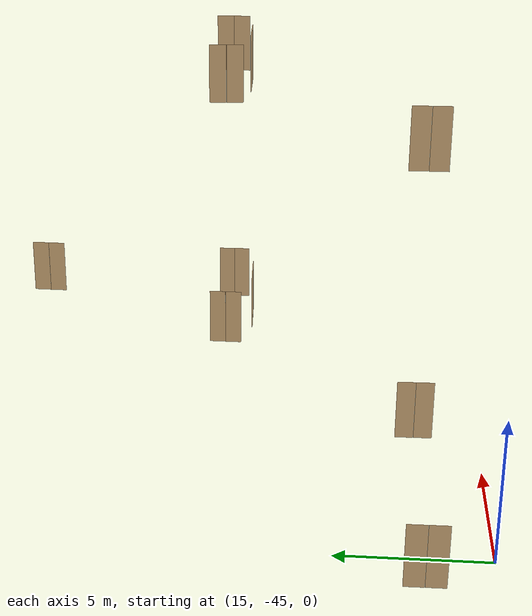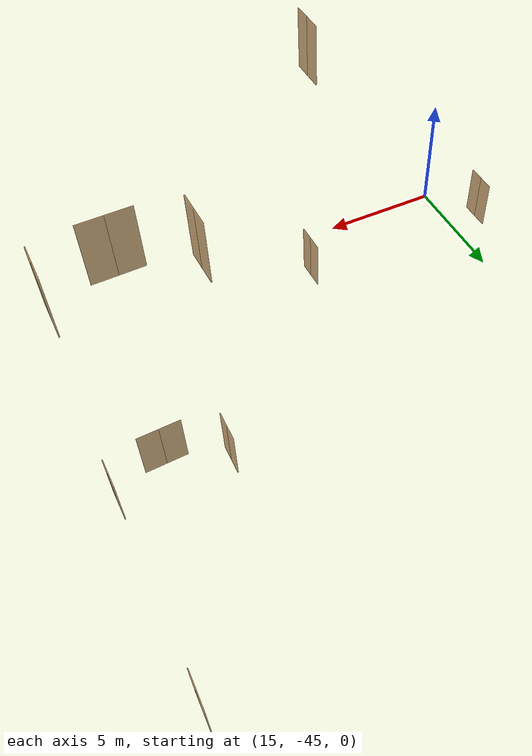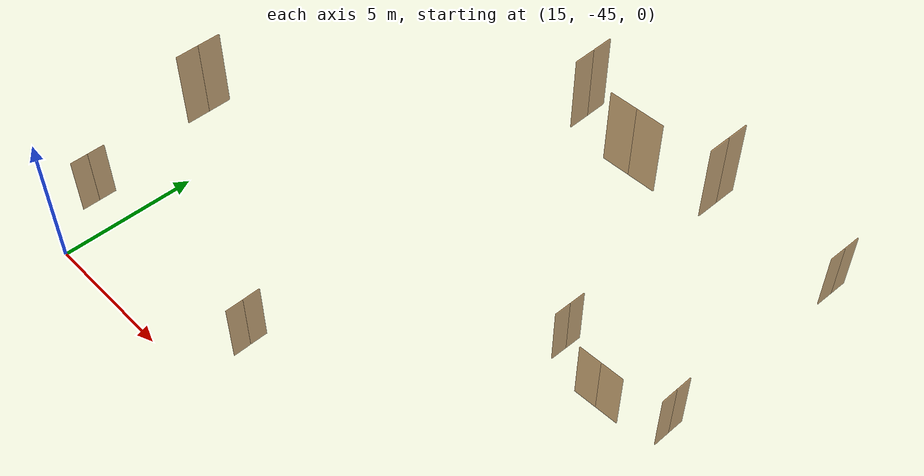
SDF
<sdf version="1.7">
 <world name="sim_world">
  <model name="door20">
   <pose>22.196594984362328 -42.79629647210699 0.0 0 0 1.5841898704715496</pose>
   <link name="right">
    <pose>0.3262262213419995 0 1.11 0 0 0</pose>
    <visual name="right_visual">
     <geometry><box><size>0.642452442683999 0.03 2.2</size></box></geometry>
     <material>
      <ambient>0.5 0.25 0 0.6</ambient>
      <diffuse>0.5 0.25 0 0.6</diffuse>
      <pbr><metal><metalness>0.0</metalness></metal></pbr>
     </material>
    </visual>
    <collision name="right_collision">
     <geometry><box><size>0.642452442683999 0.03 2.2</size></box></geometry>
     <surface><contact><collide_bitmask>0x02</collide_bitmask></contact></surface>
    </collision>
    <inertial>
     <mass>50.0</mass>
     <inertia><ixx>20.17041666666667</ixx><iyy>21.886438087960993</iyy><izz>1.7235214212943213</izz></inertia>
    </inertial>
   </link>
   <joint name="right_joint" type="revolute">
    <parent>world</parent>
    <child>right</child>
    <axis><xyz>0 0 -1</xyz><limit><lower>0</lower><upper>1.57</upper></limit></axis>
    <pose>0.3262262213419995 0 0 0 0 0</pose>
   </joint>
   <link name="left">
    <pose>-0.3262262213419995 0 1.11 0 0 0</pose>
    <visual name="left_visual">
     <geometry><box><size>0.642452442683999 0.03 2.2</size></box></geometry>
     <material>
      <ambient>0.5 0.25 0 0.6</ambient>
      <diffuse>0.5 0.25 0 0.6</diffuse>
      <pbr><metal><metalness>0.0</metalness></metal></pbr>
     </material>
    </visual>
    <collision name="left_collision">
     <geometry><box><size>0.642452442683999 0.03 2.2</size></box></geometry>
     <surface><contact><collide_bitmask>0x02</collide_bitmask></contact></surface>
    </collision>
    <inertial>
     <mass>50.0</mass>
     <inertia><ixx>20.17041666666667</ixx><iyy>21.886438087960993</iyy><izz>1.7235214212943213</izz></inertia>
    </inertial>
   </link>
   <joint name="left_joint" type="revolute">
    <parent>world</parent>
    <child>left</child>
    <axis><xyz>0 0 -1</xyz><limit><lower>-1.57</lower><upper>0</upper></limit></axis>
    <pose>-0.3262262213419995 0 0 0 0 0</pose>
   </joint>
   <plugin name="register_component" filename="libregister_component.so">
    <component name="Door">
     <v_max_door>0.5</v_max_door>
     <a_max_door>0.3</a_max_door>
     <a_nom_door>0.15</a_nom_door>
     <dx_min_door>0.01</dx_min_door>
     <f_max_door>500.0</f_max_door>
     <ros_interface>true</ros_interface>
     <door name="door20" type="DoubleSwingDoor" left_joint_name="left_joint" right_joint_name="right_joint"/>
    </component>
   </plugin>
  </model>
  <model name="door18">
   <pose>13.645016197706322 -42.78745664241474 0.0 0 0 1.5759858748518023</pose>
   <link name="right">
    <pose>0.3323023677213366 0 1.11 0 0 0</pose>
    <visual name="right_visual">
     <geometry><box><size>0.6546047354426732 0.03 2.2</size></box></geometry>
     <material>
      <ambient>0.5 0.25 0 0.6</ambient>
      <diffuse>0.5 0.25 0 0.6</diffuse>
      <pbr><metal><metalness>0.0</metalness></metal></pbr>
     </material>
    </visual>
    <collision name="right_collision">
     <geometry><box><size>0.6546047354426732 0.03 2.2</size></box></geometry>
     <surface><contact><collide_bitmask>0x02</collide_bitmask></contact></surface>
    </collision>
    <inertial>
     <mass>50.0</mass>
     <inertia><ixx>20.17041666666667</ixx><iyy>21.952113998599888</iyy><izz>1.7891973319332173</izz></inertia>
    </inertial>
   </link>
   <joint name="right_joint" type="revolute">
    <parent>world</parent>
    <child>right</child>
    <axis><xyz>0 0 -1</xyz><limit><lower>0</lower><upper>1.57</upper></limit></axis>
    <pose>0.3323023677213366 0 0 0 0 0</pose>
   </joint>
   <link name="left">
    <pose>-0.3323023677213366 0 1.11 0 0 0</pose>
    <visual name="left_visual">
     <geometry><box><size>0.6546047354426732 0.03 2.2</size></box></geometry>
     <material>
      <ambient>0.5 0.25 0 0.6</ambient>
      <diffuse>0.5 0.25 0 0.6</diffuse>
      <pbr><metal><metalness>0.0</metalness></metal></pbr>
     </material>
    </visual>
    <collision name="left_collision">
     <geometry><box><size>0.6546047354426732 0.03 2.2</size></box></geometry>
     <surface><contact><collide_bitmask>0x02</collide_bitmask></contact></surface>
    </collision>
    <inertial>
     <mass>50.0</mass>
     <inertia><ixx>20.17041666666667</ixx><iyy>21.952113998599888</iyy><izz>1.7891973319332173</izz></inertia>
    </inertial>
   </link>
   <joint name="left_joint" type="revolute">
    <parent>world</parent>
    <child>left</child>
    <axis><xyz>0 0 -1</xyz><limit><lower>-1.57</lower><upper>0</upper></limit></axis>
    <pose>-0.3323023677213366 0 0 0 0 0</pose>
   </joint>
   <plugin name="register_component" filename="libregister_component.so">
    <component name="Door">
     <v_max_door>0.5</v_max_door>
     <a_max_door>0.3</a_max_door>
     <a_nom_door>0.15</a_nom_door>
     <dx_min_door>0.01</dx_min_door>
     <f_max_door>500.0</f_max_door>
     <ros_interface>true</ros_interface>
     <door name="door18" type="DoubleSwingDoor" left_joint_name="left_joint" right_joint_name="right_joint"/>
    </component>
   </plugin>
  </model>
  <model name="door31">
   <pose>33.37429878277079 -27.67185507202123 0.0 0 0 1.5524595629320217</pose>
   <link name="right">
    <pose>0.3390572231146725 0 1.11 0 0 0</pose>
    <visual name="right_visual">
     <geometry><box><size>0.668114446229345 0.03 2.2</size></box></geometry>
     <material>
      <ambient>0.5 0.25 0 0.6</ambient>
      <diffuse>0.5 0.25 0 0.6</diffuse>
      <pbr><metal><metalness>0.0</metalness></metal></pbr>
     </material>
    </visual>
    <collision name="right_collision">
     <geometry><box><size>0.668114446229345 0.03 2.2</size></box></geometry>
     <surface><contact><collide_bitmask>0x02</collide_bitmask></contact></surface>
    </collision>
    <inertial>
     <mass>50.0</mass>
     <inertia><ixx>20.17041666666667</ixx><iyy>22.026570471918106</iyy><izz>1.8636538052514349</izz></inertia>
    </inertial>
   </link>
   <joint name="right_joint" type="revolute">
    <parent>world</parent>
    <child>right</child>
    <axis><xyz>0 0 -1</xyz><limit><lower>0</lower><upper>1.57</upper></limit></axis>
    <pose>0.3390572231146725 0 0 0 0 0</pose>
   </joint>
   <link name="left">
    <pose>-0.3390572231146725 0 1.11 0 0 0</pose>
    <visual name="left_visual">
     <geometry><box><size>0.668114446229345 0.03 2.2</size></box></geometry>
     <material>
      <ambient>0.5 0.25 0 0.6</ambient>
      <diffuse>0.5 0.25 0 0.6</diffuse>
      <pbr><metal><metalness>0.0</metalness></metal></pbr>
     </material>
    </visual>
    <collision name="left_collision">
     <geometry><box><size>0.668114446229345 0.03 2.2</size></box></geometry>
     <surface><contact><collide_bitmask>0x02</collide_bitmask></contact></surface>
    </collision>
    <inertial>
     <mass>50.0</mass>
     <inertia><ixx>20.17041666666667</ixx><iyy>22.026570471918106</iyy><izz>1.8636538052514349</izz></inertia>
    </inertial>
   </link>
   <joint name="left_joint" type="revolute">
    <parent>world</parent>
    <child>left</child>
    <axis><xyz>0 0 -1</xyz><limit><lower>-1.57</lower><upper>0</upper></limit></axis>
    <pose>-0.3390572231146725 0 0 0 0 0</pose>
   </joint>
   <plugin name="register_component" filename="libregister_component.so">
    <component name="Door">
     <v_max_door>0.5</v_max_door>
     <a_max_door>0.3</a_max_door>
     <a_nom_door>0.15</a_nom_door>
     <dx_min_door>0.01</dx_min_door>
     <f_max_door>500.0</f_max_door>
     <ros_interface>true</ros_interface>
     <door name="door31" type="DoubleSwingDoor" left_joint_name="left_joint" right_joint_name="right_joint"/>
    </component>
   </plugin>
  </model>
  <model name="door33">
   <pose>29.060751723437633 -35.60632679701412 0.0 0 0 1.5595276240747098</pose>
   <link name="right">
    <pose>0.31121799356818586 0 1.11 0 0 0</pose>
    <visual name="right_visual">
     <geometry><box><size>0.6124359871363717 0.03 2.2</size></box></geometry>
     <material>
      <ambient>0.5 0.25 0 0.6</ambient>
      <diffuse>0.5 0.25 0 0.6</diffuse>
      <pbr><metal><metalness>0.0</metalness></metal></pbr>
     </material>
    </visual>
    <collision name="right_collision">
     <geometry><box><size>0.6124359871363717 0.03 2.2</size></box></geometry>
     <surface><contact><collide_bitmask>0x02</collide_bitmask></contact></surface>
    </collision>
    <inertial>
     <mass>50.0</mass>
     <inertia><ixx>20.17041666666667</ixx><iyy>21.729490993082095</iyy><izz>1.5665743264154253</izz></inertia>
    </inertial>
   </link>
   <joint name="right_joint" type="revolute">
    <parent>world</parent>
    <child>right</child>
    <axis><xyz>0 0 1</xyz><limit><lower>0</lower><upper>1.57</upper></limit></axis>
    <pose>0.31121799356818586 0 0 0 0 0</pose>
   </joint>
   <link name="left">
    <pose>-0.31121799356818586 0 1.11 0 0 0</pose>
    <visual name="left_visual">
     <geometry><box><size>0.6124359871363717 0.03 2.2</size></box></geometry>
     <material>
      <ambient>0.5 0.25 0 0.6</ambient>
      <diffuse>0.5 0.25 0 0.6</diffuse>
      <pbr><metal><metalness>0.0</metalness></metal></pbr>
     </material>
    </visual>
    <collision name="left_collision">
     <geometry><box><size>0.6124359871363717 0.03 2.2</size></box></geometry>
     <surface><contact><collide_bitmask>0x02</collide_bitmask></contact></surface>
    </collision>
    <inertial>
     <mass>50.0</mass>
     <inertia><ixx>20.17041666666667</ixx><iyy>21.729490993082095</iyy><izz>1.5665743264154253</izz></inertia>
    </inertial>
   </link>
   <joint name="left_joint" type="revolute">
    <parent>world</parent>
    <child>left</child>
    <axis><xyz>0 0 1</xyz><limit><lower>-1.57</lower><upper>0</upper></limit></axis>
    <pose>-0.31121799356818586 0 0 0 0 0</pose>
   </joint>
   <plugin name="register_component" filename="libregister_component.so">
    <component name="Door">
     <v_max_door>0.5</v_max_door>
     <a_max_door>0.3</a_max_door>
     <a_nom_door>0.15</a_nom_door>
     <dx_min_door>0.01</dx_min_door>
     <f_max_door>500.0</f_max_door>
     <ros_interface>true</ros_interface>
     <door name="door33" type="DoubleSwingDoor" left_joint_name="left_joint" right_joint_name="right_joint"/>
    </component>
   </plugin>
  </model>
  <model name="door32">
   <pose>33.37790717226811 -35.65114908101101 0.0 0 0 1.5830044547429667</pose>
   <link name="right">
    <pose>0.3116054796662517 0 1.11 0 0 0</pose>
    <visual name="right_visual">
     <geometry><box><size>0.6132109593325034 0.03 2.2</size></box></geometry>
     <material>
      <ambient>0.5 0.25 0 0.6</ambient>
      <diffuse>0.5 0.25 0 0.6</diffuse>
      <pbr><metal><metalness>0.0</metalness></metal></pbr>
     </material>
    </visual>
    <collision name="right_collision">
     <geometry><box><size>0.6132109593325034 0.03 2.2</size></box></geometry>
     <surface><contact><collide_bitmask>0x02</collide_bitmask></contact></surface>
    </collision>
    <inertial>
     <mass>50.0</mass>
     <inertia><ixx>20.17041666666667</ixx><iyy>21.733448669356207</iyy><izz>1.570532002689538</izz></inertia>
    </inertial>
   </link>
   <joint name="right_joint" type="revolute">
    <parent>world</parent>
    <child>right</child>
    <axis><xyz>0 0 -1</xyz><limit><lower>0</lower><upper>1.57</upper></limit></axis>
    <pose>0.3116054796662517 0 0 0 0 0</pose>
   </joint>
   <link name="left">
    <pose>-0.3116054796662517 0 1.11 0 0 0</pose>
    <visual name="left_visual">
     <geometry><box><size>0.6132109593325034 0.03 2.2</size></box></geometry>
     <material>
      <ambient>0.5 0.25 0 0.6</ambient>
      <diffuse>0.5 0.25 0 0.6</diffuse>
      <pbr><metal><metalness>0.0</metalness></metal></pbr>
     </material>
    </visual>
    <collision name="left_collision">
     <geometry><box><size>0.6132109593325034 0.03 2.2</size></box></geometry>
     <surface><contact><collide_bitmask>0x02</collide_bitmask></contact></surface>
    </collision>
    <inertial>
     <mass>50.0</mass>
     <inertia><ixx>20.17041666666667</ixx><iyy>21.733448669356207</iyy><izz>1.570532002689538</izz></inertia>
    </inertial>
   </link>
   <joint name="left_joint" type="revolute">
    <parent>world</parent>
    <child>left</child>
    <axis><xyz>0 0 -1</xyz><limit><lower>-1.57</lower><upper>0</upper></limit></axis>
    <pose>-0.3116054796662517 0 0 0 0 0</pose>
   </joint>
   <plugin name="register_component" filename="libregister_component.so">
    <component name="Door">
     <v_max_door>0.5</v_max_door>
     <a_max_door>0.3</a_max_door>
     <a_nom_door>0.15</a_nom_door>
     <dx_min_door>0.01</dx_min_door>
     <f_max_door>500.0</f_max_door>
     <ros_interface>true</ros_interface>
     <door name="door32" type="DoubleSwingDoor" left_joint_name="left_joint" right_joint_name="right_joint"/>
    </component>
   </plugin>
  </model>
  <model name="door34_end">
   <pose>31.24236372538701 -36.553971031546716 0.0 0 0 -3.1073071053219823</pose>
   <link name="right">
    <pose>0.4244453360944399 0 1.11 0 0 0</pose>
    <visual name="right_visual">
     <geometry><box><size>0.8388906721888798 0.03 2.2</size></box></geometry>
     <material>
      <ambient>0.5 0.25 0 0.6</ambient>
      <diffuse>0.5 0.25 0 0.6</diffuse>
      <pbr><metal><metalness>0.0</metalness></metal></pbr>
     </material>
    </visual>
    <collision name="right_collision">
     <geometry><box><size>0.8388906721888798 0.03 2.2</size></box></geometry>
     <surface><contact><collide_bitmask>0x02</collide_bitmask></contact></surface>
    </collision>
    <inertial>
     <mass>50.0</mass>
     <inertia><ixx>20.17041666666667</ixx><iyy>23.098906499522965</iyy><izz>2.9359898328562943</izz></inertia>
    </inertial>
   </link>
   <joint name="right_joint" type="revolute">
    <parent>world</parent>
    <child>right</child>
    <axis><xyz>0 0 -1</xyz><limit><lower>0</lower><upper>1.57</upper></limit></axis>
    <pose>0.4244453360944399 0 0 0 0 0</pose>
   </joint>
   <link name="left">
    <pose>-0.4244453360944399 0 1.11 0 0 0</pose>
    <visual name="left_visual">
     <geometry><box><size>0.8388906721888798 0.03 2.2</size></box></geometry>
     <material>
      <ambient>0.5 0.25 0 0.6</ambient>
      <diffuse>0.5 0.25 0 0.6</diffuse>
      <pbr><metal><metalness>0.0</metalness></metal></pbr>
     </material>
    </visual>
    <collision name="left_collision">
     <geometry><box><size>0.8388906721888798 0.03 2.2</size></box></geometry>
     <surface><contact><collide_bitmask>0x02</collide_bitmask></contact></surface>
    </collision>
    <inertial>
     <mass>50.0</mass>
     <inertia><ixx>20.17041666666667</ixx><iyy>23.098906499522965</iyy><izz>2.9359898328562943</izz></inertia>
    </inertial>
   </link>
   <joint name="left_joint" type="revolute">
    <parent>world</parent>
    <child>left</child>
    <axis><xyz>0 0 -1</xyz><limit><lower>-1.57</lower><upper>0</upper></limit></axis>
    <pose>-0.4244453360944399 0 0 0 0 0</pose>
   </joint>
   <plugin name="register_component" filename="libregister_component.so">
    <component name="Door">
     <v_max_door>0.5</v_max_door>
     <a_max_door>0.3</a_max_door>
     <a_nom_door>0.15</a_nom_door>
     <dx_min_door>0.01</dx_min_door>
     <f_max_door>500.0</f_max_door>
     <ros_interface>true</ros_interface>
     <door name="door34_end" type="DoubleSwingDoor" left_joint_name="left_joint" right_joint_name="right_joint"/>
    </component>
   </plugin>
  </model>
  <model name="N1_door25">
   <pose>29.03334344268106 -35.659298223171604 10.0 0 0 1.59909431136708</pose>
   <link name="right">
    <pose>0.31801738144546654 0 1.11 0 0 0</pose>
    <visual name="right_visual">
     <geometry><box><size>0.6260347628909331 0.03 2.2</size></box></geometry>
     <material>
      <ambient>0.5 0.25 0 0.6</ambient>
      <diffuse>0.5 0.25 0 0.6</diffuse>
      <pbr><metal><metalness>0.0</metalness></metal></pbr>
     </material>
    </visual>
    <collision name="right_collision">
     <geometry><box><size>0.6260347628909331 0.03 2.2</size></box></geometry>
     <surface><contact><collide_bitmask>0x02</collide_bitmask></contact></surface>
    </collision>
    <inertial>
     <mass>50.0</mass>
     <inertia><ixx>20.17041666666667</ixx><iyy>21.79966468478295</iyy><izz>1.6367480181162783</izz></inertia>
    </inertial>
   </link>
   <joint name="right_joint" type="revolute">
    <parent>world</parent>
    <child>right</child>
    <axis><xyz>0 0 1</xyz><limit><lower>0</lower><upper>1.57</upper></limit></axis>
    <pose>0.31801738144546654 0 0 0 0 0</pose>
   </joint>
   <link name="left">
    <pose>-0.31801738144546654 0 1.11 0 0 0</pose>
    <visual name="left_visual">
     <geometry><box><size>0.6260347628909331 0.03 2.2</size></box></geometry>
     <material>
      <ambient>0.5 0.25 0 0.6</ambient>
      <diffuse>0.5 0.25 0 0.6</diffuse>
      <pbr><metal><metalness>0.0</metalness></metal></pbr>
     </material>
    </visual>
    <collision name="left_collision">
     <geometry><box><size>0.6260347628909331 0.03 2.2</size></box></geometry>
     <surface><contact><collide_bitmask>0x02</collide_bitmask></contact></surface>
    </collision>
    <inertial>
     <mass>50.0</mass>
     <inertia><ixx>20.17041666666667</ixx><iyy>21.79966468478295</iyy><izz>1.6367480181162783</izz></inertia>
    </inertial>
   </link>
   <joint name="left_joint" type="revolute">
    <parent>world</parent>
    <child>left</child>
    <axis><xyz>0 0 1</xyz><limit><lower>-1.57</lower><upper>0</upper></limit></axis>
    <pose>-0.31801738144546654 0 0 0 0 0</pose>
   </joint>
   <plugin name="register_component" filename="libregister_component.so">
    <component name="Door">
     <v_max_door>0.5</v_max_door>
     <a_max_door>0.3</a_max_door>
     <a_nom_door>0.15</a_nom_door>
     <dx_min_door>0.01</dx_min_door>
     <f_max_door>500.0</f_max_door>
     <ros_interface>true</ros_interface>
     <door name="N1_door25" type="DoubleSwingDoor" left_joint_name="left_joint" right_joint_name="right_joint"/>
    </component>
   </plugin>
  </model>
  <model name="N1_door26">
   <pose>33.34224610052984 -35.6193817963664 10.0 0 0 1.5777613576291543</pose>
   <link name="right">
    <pose>0.3220934529684108 0 1.11 0 0 0</pose>
    <visual name="right_visual">
     <geometry><box><size>0.6341869059368216 0.03 2.2</size></box></geometry>
     <material>
      <ambient>0.5 0.25 0 0.6</ambient>
      <diffuse>0.5 0.25 0 0.6</diffuse>
      <pbr><metal><metalness>0.0</metalness></metal></pbr>
     </material>
    </visual>
    <collision name="right_collision">
     <geometry><box><size>0.6341869059368216 0.03 2.2</size></box></geometry>
     <surface><contact><collide_bitmask>0x02</collide_bitmask></contact></surface>
    </collision>
    <inertial>
     <mass>50.0</mass>
     <inertia><ixx>20.17041666666667</ixx><iyy>21.842470965257167</iyy><izz>1.6795542985904959</izz></inertia>
    </inertial>
   </link>
   <joint name="right_joint" type="revolute">
    <parent>world</parent>
    <child>right</child>
    <axis><xyz>0 0 -1</xyz><limit><lower>0</lower><upper>1.57</upper></limit></axis>
    <pose>0.3220934529684108 0 0 0 0 0</pose>
   </joint>
   <link name="left">
    <pose>-0.3220934529684108 0 1.11 0 0 0</pose>
    <visual name="left_visual">
     <geometry><box><size>0.6341869059368216 0.03 2.2</size></box></geometry>
     <material>
      <ambient>0.5 0.25 0 0.6</ambient>
      <diffuse>0.5 0.25 0 0.6</diffuse>
      <pbr><metal><metalness>0.0</metalness></metal></pbr>
     </material>
    </visual>
    <collision name="left_collision">
     <geometry><box><size>0.6341869059368216 0.03 2.2</size></box></geometry>
     <surface><contact><collide_bitmask>0x02</collide_bitmask></contact></surface>
    </collision>
    <inertial>
     <mass>50.0</mass>
     <inertia><ixx>20.17041666666667</ixx><iyy>21.842470965257167</iyy><izz>1.6795542985904959</izz></inertia>
    </inertial>
   </link>
   <joint name="left_joint" type="revolute">
    <parent>world</parent>
    <child>left</child>
    <axis><xyz>0 0 -1</xyz><limit><lower>-1.57</lower><upper>0</upper></limit></axis>
    <pose>-0.3220934529684108 0 0 0 0 0</pose>
   </joint>
   <plugin name="register_component" filename="libregister_component.so">
    <component name="Door">
     <v_max_door>0.5</v_max_door>
     <a_max_door>0.3</a_max_door>
     <a_nom_door>0.15</a_nom_door>
     <dx_min_door>0.01</dx_min_door>
     <f_max_door>500.0</f_max_door>
     <ros_interface>true</ros_interface>
     <door name="N1_door26" type="DoubleSwingDoor" left_joint_name="left_joint" right_joint_name="right_joint"/>
    </component>
   </plugin>
  </model>
  <model name="N1_door27_end">
   <pose>31.21231308713694 -36.46487298664441 10.0 0 0 -3.118249667982511</pose>
   <link name="right">
    <pose>0.41189650831726277 0 1.11 0 0 0</pose>
    <visual name="right_visual">
     <geometry><box><size>0.8137930166345255 0.03 2.2</size></box></geometry>
     <material>
      <ambient>0.5 0.25 0 0.6</ambient>
      <diffuse>0.5 0.25 0 0.6</diffuse>
      <pbr><metal><metalness>0.0</metalness></metal></pbr>
     </material>
    </visual>
    <collision name="right_collision">
     <geometry><box><size>0.8137930166345255 0.03 2.2</size></box></geometry>
     <surface><contact><collide_bitmask>0x02</collide_bitmask></contact></surface>
    </collision>
    <inertial>
     <mass>50.0</mass>
     <inertia><ixx>20.17041666666667</ixx><iyy>22.92607947467968</iyy><izz>2.763162808013005</izz></inertia>
    </inertial>
   </link>
   <joint name="right_joint" type="revolute">
    <parent>world</parent>
    <child>right</child>
    <axis><xyz>0 0 -1</xyz><limit><lower>0</lower><upper>1.57</upper></limit></axis>
    <pose>0.41189650831726277 0 0 0 0 0</pose>
   </joint>
   <link name="left">
    <pose>-0.41189650831726277 0 1.11 0 0 0</pose>
    <visual name="left_visual">
     <geometry><box><size>0.8137930166345255 0.03 2.2</size></box></geometry>
     <material>
      <ambient>0.5 0.25 0 0.6</ambient>
      <diffuse>0.5 0.25 0 0.6</diffuse>
      <pbr><metal><metalness>0.0</metalness></metal></pbr>
     </material>
    </visual>
    <collision name="left_collision">
     <geometry><box><size>0.8137930166345255 0.03 2.2</size></box></geometry>
     <surface><contact><collide_bitmask>0x02</collide_bitmask></contact></surface>
    </collision>
    <inertial>
     <mass>50.0</mass>
     <inertia><ixx>20.17041666666667</ixx><iyy>22.92607947467968</iyy><izz>2.763162808013005</izz></inertia>
    </inertial>
   </link>
   <joint name="left_joint" type="revolute">
    <parent>world</parent>
    <child>left</child>
    <axis><xyz>0 0 -1</xyz><limit><lower>-1.57</lower><upper>0</upper></limit></axis>
    <pose>-0.41189650831726277 0 0 0 0 0</pose>
   </joint>
   <plugin name="register_component" filename="libregister_component.so">
    <component name="Door">
     <v_max_door>0.5</v_max_door>
     <a_max_door>0.3</a_max_door>
     <a_nom_door>0.15</a_nom_door>
     <dx_min_door>0.01</dx_min_door>
     <f_max_door>500.0</f_max_door>
     <ros_interface>true</ros_interface>
     <door name="N1_door27_end" type="DoubleSwingDoor" left_joint_name="left_joint" right_joint_name="right_joint"/>
    </component>
   </plugin>
  </model>
  <model name="N1_door16_end">
   <pose>22.202778413206865 -42.78662409793002 10.0 0 0 1.576424224856081</pose>
   <link name="right">
    <pose>0.33152666170970646 0 1.11 0 0 0</pose>
    <visual name="right_visual">
     <geometry><box><size>0.6530533234194129 0.03 2.2</size></box></geometry>
     <material>
      <ambient>0.5 0.25 0 0.6</ambient>
      <diffuse>0.5 0.25 0 0.6</diffuse>
      <pbr><metal><metalness>0.0</metalness></metal></pbr>
     </material>
    </visual>
    <collision name="right_collision">
     <geometry><box><size>0.6530533234194129 0.03 2.2</size></box></geometry>
     <surface><contact><collide_bitmask>0x02</collide_bitmask></contact></surface>
    </collision>
    <inertial>
     <mass>50.0</mass>
     <inertia><ixx>20.17041666666667</ixx><iyy>21.943661013454758</iyy><izz>1.7807443467880848</izz></inertia>
    </inertial>
   </link>
   <joint name="right_joint" type="revolute">
    <parent>world</parent>
    <child>right</child>
    <axis><xyz>0 0 -1</xyz><limit><lower>0</lower><upper>1.57</upper></limit></axis>
    <pose>0.33152666170970646 0 0 0 0 0</pose>
   </joint>
   <link name="left">
    <pose>-0.33152666170970646 0 1.11 0 0 0</pose>
    <visual name="left_visual">
     <geometry><box><size>0.6530533234194129 0.03 2.2</size></box></geometry>
     <material>
      <ambient>0.5 0.25 0 0.6</ambient>
      <diffuse>0.5 0.25 0 0.6</diffuse>
      <pbr><metal><metalness>0.0</metalness></metal></pbr>
     </material>
    </visual>
    <collision name="left_collision">
     <geometry><box><size>0.6530533234194129 0.03 2.2</size></box></geometry>
     <surface><contact><collide_bitmask>0x02</collide_bitmask></contact></surface>
    </collision>
    <inertial>
     <mass>50.0</mass>
     <inertia><ixx>20.17041666666667</ixx><iyy>21.943661013454758</iyy><izz>1.7807443467880848</izz></inertia>
    </inertial>
   </link>
   <joint name="left_joint" type="revolute">
    <parent>world</parent>
    <child>left</child>
    <axis><xyz>0 0 -1</xyz><limit><lower>-1.57</lower><upper>0</upper></limit></axis>
    <pose>-0.33152666170970646 0 0 0 0 0</pose>
   </joint>
   <plugin name="register_component" filename="libregister_component.so">
    <component name="Door">
     <v_max_door>0.5</v_max_door>
     <a_max_door>0.3</a_max_door>
     <a_nom_door>0.15</a_nom_door>
     <dx_min_door>0.01</dx_min_door>
     <f_max_door>500.0</f_max_door>
     <ros_interface>true</ros_interface>
     <door name="N1_door16_end" type="DoubleSwingDoor" left_joint_name="left_joint" right_joint_name="right_joint"/>
    </component>
   </plugin>
  </model>
 </world>
</sdf>
